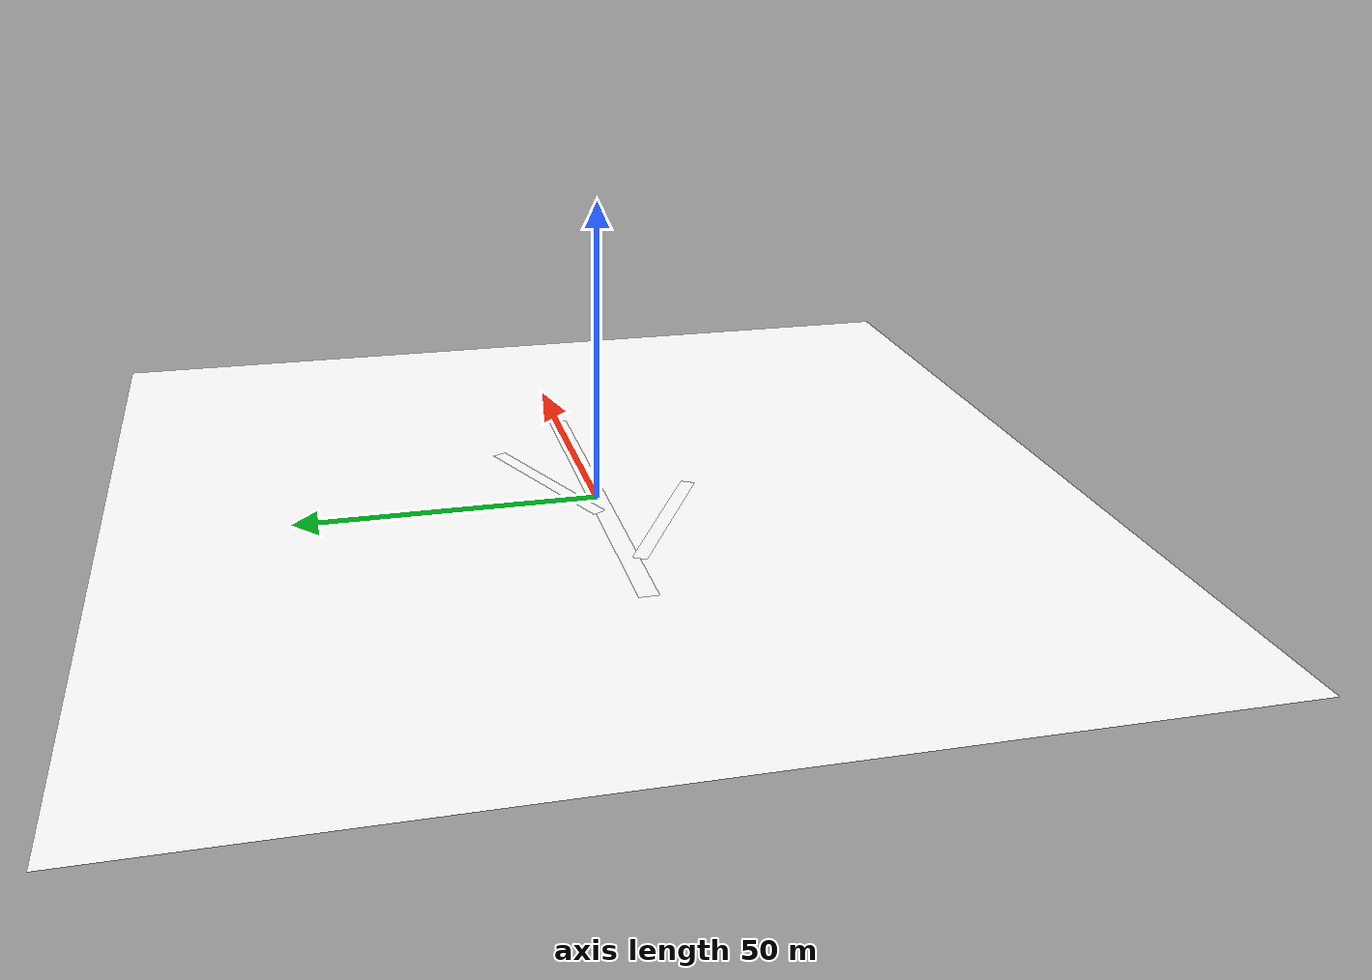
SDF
<?xml version="1.0"?>
<sdf version="1.9">
  <model name="aerointercept_park_surface">
    <static>true</static>
    <link name="surface">
      <collision name="ground_collision">
        <geometry><plane><normal>0 0 1</normal><size>160 160</size></plane></geometry>
        <surface><friction><ode><mu>0.85</mu><mu2>0.85</mu2></ode></friction></surface>
      </collision>
      <visual name="meadow">
        <cast_shadows>false</cast_shadows>
        <geometry><mesh><uri>meshes/ground.obj</uri></mesh></geometry>
        <material>
          <ambient>0.34 0.38 0.27 1</ambient><diffuse>1 1 1 1</diffuse><specular>0.02 0.02 0.02 1</specular>
          <pbr><metal>
            <albedo_map>materials/textures/meadow_albedo.png</albedo_map>
            <metalness>0.0</metalness><roughness>0.94</roughness>
          </metal></pbr>
        </material>
      </visual>
      <visual name="main_gravel_path">
        <pose>0 0 0.018 0 0 0</pose>
        <geometry><mesh><uri>meshes/path_long.obj</uri></mesh></geometry>
        <material>
          <ambient>0.42 0.36 0.28 1</ambient><diffuse>1 1 1 1</diffuse><specular>0.03 0.03 0.03 1</specular>
          <pbr><metal>
            <albedo_map>materials/textures/gravel_albedo.png</albedo_map>
            <metalness>0.0</metalness><roughness>0.89</roughness>
          </metal></pbr>
        </material>
      </visual>
      <visual name="north_gravel_path">
        <pose>8 7 0.020 0 0 0.42</pose>
        <geometry><mesh><uri>meshes/path_short.obj</uri></mesh></geometry>
        <material>
          <ambient>0.42 0.36 0.28 1</ambient><diffuse>1 1 1 1</diffuse><specular>0.03 0.03 0.03 1</specular>
          <pbr><metal>
            <albedo_map>materials/textures/gravel_albedo.png</albedo_map>
            <metalness>0.0</metalness><roughness>0.89</roughness>
          </metal></pbr>
        </material>
      </visual>
      <visual name="south_gravel_path">
        <pose>-10 -9 0.020 0 0 -0.52</pose>
        <geometry><mesh><uri>meshes/path_short.obj</uri></mesh></geometry>
        <material>
          <ambient>0.42 0.36 0.28 1</ambient><diffuse>1 1 1 1</diffuse><specular>0.03 0.03 0.03 1</specular>
          <pbr><metal>
            <albedo_map>materials/textures/gravel_albedo.png</albedo_map>
            <metalness>0.0</metalness><roughness>0.89</roughness>
          </metal></pbr>
        </material>
      </visual>
    </link>
  </model>
</sdf>
